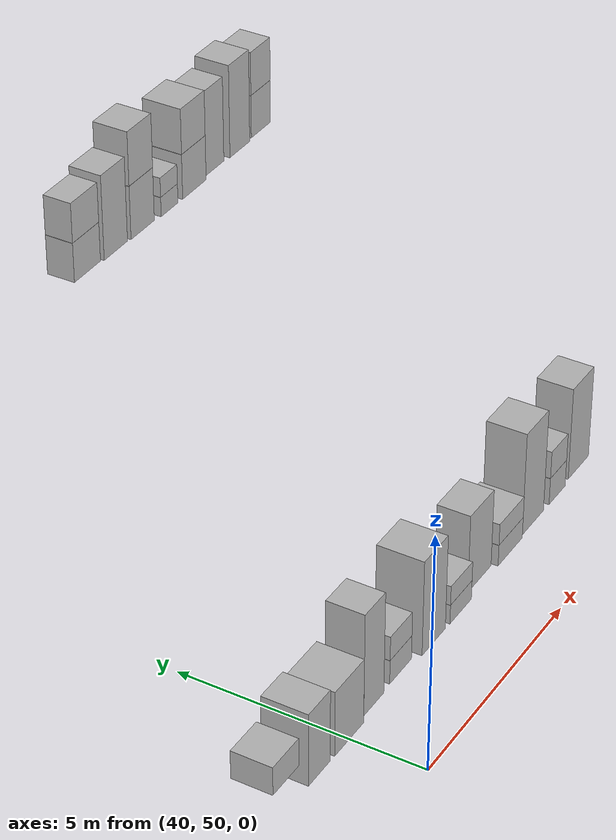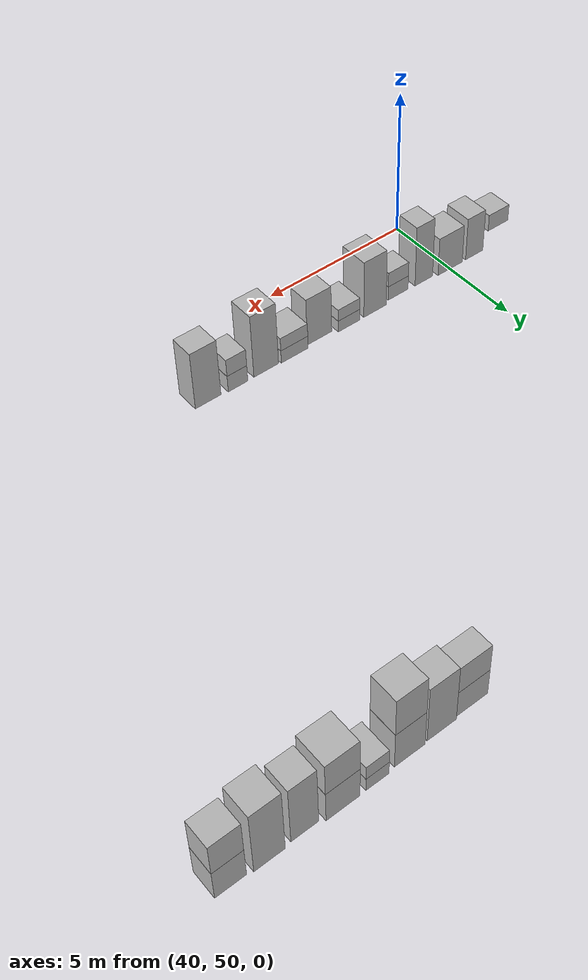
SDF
<sdf version="1.5">
 <world name="default">
  <model name="ground_plane">
   <static>true</static>
   <link name="link">
    <collision name="collision">
     <geometry><plane><normal>0 0 1</normal><size>250 250</size></plane></geometry>
     <surface><friction><ode><mu>1</mu><mu2>1</mu2></ode></friction></surface>
    </collision>
    <visual name="grass">
     <cast_shadows>false</cast_shadows>
     <geometry><mesh><uri>file://grass_plane/meshes/grass_plane.dae</uri></mesh></geometry>
    </visual>
   </link>
  </model>
  <model name="Cardboard_box_top_293">
   <link name="link_0">
    <pose>38 52 0.607929482105 0 0 0</pose>
    <inertial>
     <mass>1</mass>
     <inertia>
      <ixx>0.166667</ixx>
      <ixy>0</ixy>
      <ixz>0</ixz>
      <iyy>0.166667</iyy>
      <iyz>0</iyz>
      <izz>0.166667</izz>
     </inertia>
    </inertial>
    <collision name="collision">
     <geometry>
      <mesh>
       <uri>model://Cardboard_box/meshes/cardboard_box.dae</uri>
       <scale>2.08884652729 2.05273501471 1.51982370526</scale>
      </mesh>
     </geometry>
    </collision>
    <visual name="visual">
     <geometry>
      <mesh>
       <uri>model://Cardboard_box/meshes/cardboard_box.dae</uri>
       <scale>2.08884652729 2.05273501471 1.51982370526</scale>
      </mesh>
     </geometry>
    </visual>
   </link>
   <static>1</static>
  </model>
  <model name="Cardboard_box_294">
   <link name="link_0">
    <pose>39 52 0 0 0 0</pose>
    <inertial>
     <mass>1</mass>
     <inertia>
      <ixx>0.166667</ixx>
      <ixy>0</ixy>
      <ixz>0</ixz>
      <iyy>0.166667</iyy>
      <iyz>0</iyz>
      <izz>0.166667</izz>
     </inertia>
    </inertial>
    <collision name="collision">
     <geometry>
      <mesh>
       <uri>model://Cardboard_box/meshes/cardboard_box.dae</uri>
       <scale>1.80984824267 2.32740431327 3.96974668573</scale>
      </mesh>
     </geometry>
    </collision>
    <visual name="visual">
     <geometry>
      <mesh>
       <uri>model://Cardboard_box/meshes/cardboard_box.dae</uri>
       <scale>1.80984824267 2.32740431327 3.96974668573</scale>
      </mesh>
     </geometry>
    </visual>
   </link>
   <static>1</static>
  </model>
  <model name="Cardboard_box_295">
   <link name="link_0">
    <pose>40 52 0 0 0 0</pose>
    <inertial>
     <mass>1</mass>
     <inertia>
      <ixx>0.166667</ixx>
      <ixy>0</ixy>
      <ixz>0</ixz>
      <iyy>0.166667</iyy>
      <iyz>0</iyz>
      <izz>0.166667</izz>
     </inertia>
    </inertial>
    <collision name="collision">
     <geometry>
      <mesh>
       <uri>model://Cardboard_box/meshes/cardboard_box.dae</uri>
       <scale>2.49127899919 2.36117213884 3.57008381776</scale>
      </mesh>
     </geometry>
    </collision>
    <visual name="visual">
     <geometry>
      <mesh>
       <uri>model://Cardboard_box/meshes/cardboard_box.dae</uri>
       <scale>2.49127899919 2.36117213884 3.57008381776</scale>
      </mesh>
     </geometry>
    </visual>
   </link>
   <static>1</static>
  </model>
  <model name="Cardboard_box_296">
   <link name="link_0">
    <pose>41 52 0 0 0 0</pose>
    <inertial>
     <mass>1</mass>
     <inertia>
      <ixx>0.166667</ixx>
      <ixy>0</ixy>
      <ixz>0</ixz>
      <iyy>0.166667</iyy>
      <iyz>0</iyz>
      <izz>0.166667</izz>
     </inertia>
    </inertial>
    <collision name="collision">
     <geometry>
      <mesh>
       <uri>model://Cardboard_box/meshes/cardboard_box.dae</uri>
       <scale>1.77474973916 1.9382852117 5.63158389002</scale>
      </mesh>
     </geometry>
    </collision>
    <visual name="visual">
     <geometry>
      <mesh>
       <uri>model://Cardboard_box/meshes/cardboard_box.dae</uri>
       <scale>1.77474973916 1.9382852117 5.63158389002</scale>
      </mesh>
     </geometry>
    </visual>
   </link>
   <static>1</static>
  </model>
  <model name="Cardboard_box_297">
   <link name="link_0">
    <pose>42 52 0 0 0 0</pose>
    <inertial>
     <mass>1</mass>
     <inertia>
      <ixx>0.166667</ixx>
      <ixy>0</ixy>
      <ixz>0</ixz>
      <iyy>0.166667</iyy>
      <iyz>0</iyz>
      <izz>0.166667</izz>
     </inertia>
    </inertial>
    <collision name="collision">
     <geometry>
      <mesh>
       <uri>model://Cardboard_box/meshes/cardboard_box.dae</uri>
       <scale>1.98235867764 1.80844175372 1.32904738398</scale>
      </mesh>
     </geometry>
    </collision>
    <visual name="visual">
     <geometry>
      <mesh>
       <uri>model://Cardboard_box/meshes/cardboard_box.dae</uri>
       <scale>1.98235867764 1.80844175372 1.32904738398</scale>
      </mesh>
     </geometry>
    </visual>
   </link>
   <static>1</static>
  </model>
  <model name="Cardboard_box_top_297">
   <link name="link_0">
    <pose>42 52 0.531618953594 0 0 0</pose>
    <inertial>
     <mass>1</mass>
     <inertia>
      <ixx>0.166667</ixx>
      <ixy>0</ixy>
      <ixz>0</ixz>
      <iyy>0.166667</iyy>
      <iyz>0</iyz>
      <izz>0.166667</izz>
     </inertia>
    </inertial>
    <collision name="collision">
     <geometry>
      <mesh>
       <uri>model://Cardboard_box/meshes/cardboard_box.dae</uri>
       <scale>1.98235867764 1.80844175372 1.32904738398</scale>
      </mesh>
     </geometry>
    </collision>
    <visual name="visual">
     <geometry>
      <mesh>
       <uri>model://Cardboard_box/meshes/cardboard_box.dae</uri>
       <scale>1.98235867764 1.80844175372 1.32904738398</scale>
      </mesh>
     </geometry>
    </visual>
   </link>
   <static>1</static>
  </model>
  <model name="Cardboard_box_298">
   <link name="link_0">
    <pose>43 52 0 0 0 0</pose>
    <inertial>
     <mass>1</mass>
     <inertia>
      <ixx>0.166667</ixx>
      <ixy>0</ixy>
      <ixz>0</ixz>
      <iyy>0.166667</iyy>
      <iyz>0</iyz>
      <izz>0.166667</izz>
     </inertia>
    </inertial>
    <collision name="collision">
     <geometry>
      <mesh>
       <uri>model://Cardboard_box/meshes/cardboard_box.dae</uri>
       <scale>2.18499619586 2.40635157475 5.29486968502</scale>
      </mesh>
     </geometry>
    </collision>
    <visual name="visual">
     <geometry>
      <mesh>
       <uri>model://Cardboard_box/meshes/cardboard_box.dae</uri>
       <scale>2.18499619586 2.40635157475 5.29486968502</scale>
      </mesh>
     </geometry>
    </visual>
   </link>
   <static>1</static>
  </model>
  <model name="Cardboard_box_299">
   <link name="link_0">
    <pose>44 52 0 0 0 0</pose>
    <inertial>
     <mass>1</mass>
     <inertia>
      <ixx>0.166667</ixx>
      <ixy>0</ixy>
      <ixz>0</ixz>
      <iyy>0.166667</iyy>
      <iyz>0</iyz>
      <izz>0.166667</izz>
     </inertia>
    </inertial>
    <collision name="collision">
     <geometry>
      <mesh>
       <uri>model://Cardboard_box/meshes/cardboard_box.dae</uri>
       <scale>2.06754654523 2.45385818261 1.07654712468</scale>
      </mesh>
     </geometry>
    </collision>
    <visual name="visual">
     <geometry>
      <mesh>
       <uri>model://Cardboard_box/meshes/cardboard_box.dae</uri>
       <scale>2.06754654523 2.45385818261 1.07654712468</scale>
      </mesh>
     </geometry>
    </visual>
   </link>
   <static>1</static>
  </model>
  <model name="Cardboard_box_top_299">
   <link name="link_0">
    <pose>44 52 0.430618849871 0 0 0</pose>
    <inertial>
     <mass>1</mass>
     <inertia>
      <ixx>0.166667</ixx>
      <ixy>0</ixy>
      <ixz>0</ixz>
      <iyy>0.166667</iyy>
      <iyz>0</iyz>
      <izz>0.166667</izz>
     </inertia>
    </inertial>
    <collision name="collision">
     <geometry>
      <mesh>
       <uri>model://Cardboard_box/meshes/cardboard_box.dae</uri>
       <scale>2.06754654523 2.45385818261 1.07654712468</scale>
      </mesh>
     </geometry>
    </collision>
    <visual name="visual">
     <geometry>
      <mesh>
       <uri>model://Cardboard_box/meshes/cardboard_box.dae</uri>
       <scale>2.06754654523 2.45385818261 1.07654712468</scale>
      </mesh>
     </geometry>
    </visual>
   </link>
   <static>1</static>
  </model>
  <model name="Cardboard_box_300">
   <link name="link_0">
    <pose>45 52 0 0 0 0</pose>
    <inertial>
     <mass>1</mass>
     <inertia>
      <ixx>0.166667</ixx>
      <ixy>0</ixy>
      <ixz>0</ixz>
      <iyy>0.166667</iyy>
      <iyz>0</iyz>
      <izz>0.166667</izz>
     </inertia>
    </inertial>
    <collision name="collision">
     <geometry>
      <mesh>
       <uri>model://Cardboard_box/meshes/cardboard_box.dae</uri>
       <scale>2.28884189671 1.72778632899 4.37802884984</scale>
      </mesh>
     </geometry>
    </collision>
    <visual name="visual">
     <geometry>
      <mesh>
       <uri>model://Cardboard_box/meshes/cardboard_box.dae</uri>
       <scale>2.28884189671 1.72778632899 4.37802884984</scale>
      </mesh>
     </geometry>
    </visual>
   </link>
   <static>1</static>
  </model>
  <model name="Cardboard_box_301">
   <link name="link_0">
    <pose>46 52 0 0 0 0</pose>
    <inertial>
     <mass>1</mass>
     <inertia>
      <ixx>0.166667</ixx>
      <ixy>0</ixy>
      <ixz>0</ixz>
      <iyy>0.166667</iyy>
      <iyz>0</iyz>
      <izz>0.166667</izz>
     </inertia>
    </inertial>
    <collision name="collision">
     <geometry>
      <mesh>
       <uri>model://Cardboard_box/meshes/cardboard_box.dae</uri>
       <scale>2.45560933553 2.31068479603 1.20030977443</scale>
      </mesh>
     </geometry>
    </collision>
    <visual name="visual">
     <geometry>
      <mesh>
       <uri>model://Cardboard_box/meshes/cardboard_box.dae</uri>
       <scale>2.45560933553 2.31068479603 1.20030977443</scale>
      </mesh>
     </geometry>
    </visual>
   </link>
   <static>1</static>
  </model>
  <model name="Cardboard_box_top_301">
   <link name="link_0">
    <pose>46 52 0.480123909771 0 0 0</pose>
    <inertial>
     <mass>1</mass>
     <inertia>
      <ixx>0.166667</ixx>
      <ixy>0</ixy>
      <ixz>0</ixz>
      <iyy>0.166667</iyy>
      <iyz>0</iyz>
      <izz>0.166667</izz>
     </inertia>
    </inertial>
    <collision name="collision">
     <geometry>
      <mesh>
       <uri>model://Cardboard_box/meshes/cardboard_box.dae</uri>
       <scale>2.45560933553 2.31068479603 1.20030977443</scale>
      </mesh>
     </geometry>
    </collision>
    <visual name="visual">
     <geometry>
      <mesh>
       <uri>model://Cardboard_box/meshes/cardboard_box.dae</uri>
       <scale>2.45560933553 2.31068479603 1.20030977443</scale>
      </mesh>
     </geometry>
    </visual>
   </link>
   <static>1</static>
  </model>
  <model name="Cardboard_box_302">
   <link name="link_0">
    <pose>47 52 0 0 0 0</pose>
    <inertial>
     <mass>1</mass>
     <inertia>
      <ixx>0.166667</ixx>
      <ixy>0</ixy>
      <ixz>0</ixz>
      <iyy>0.166667</iyy>
      <iyz>0</iyz>
      <izz>0.166667</izz>
     </inertia>
    </inertial>
    <collision name="collision">
     <geometry>
      <mesh>
       <uri>model://Cardboard_box/meshes/cardboard_box.dae</uri>
       <scale>2.21564561597 2.11517232804 5.83129655435</scale>
      </mesh>
     </geometry>
    </collision>
    <visual name="visual">
     <geometry>
      <mesh>
       <uri>model://Cardboard_box/meshes/cardboard_box.dae</uri>
       <scale>2.21564561597 2.11517232804 5.83129655435</scale>
      </mesh>
     </geometry>
    </visual>
   </link>
   <static>1</static>
  </model>
  <model name="Cardboard_box_303">
   <link name="link_0">
    <pose>48 52 0 0 0 0</pose>
    <inertial>
     <mass>1</mass>
     <inertia>
      <ixx>0.166667</ixx>
      <ixy>0</ixy>
      <ixz>0</ixz>
      <iyy>0.166667</iyy>
      <iyz>0</iyz>
      <izz>0.166667</izz>
     </inertia>
    </inertial>
    <collision name="collision">
     <geometry>
      <mesh>
       <uri>model://Cardboard_box/meshes/cardboard_box.dae</uri>
       <scale>1.71643059579 2.15358051391 1.53642713254</scale>
      </mesh>
     </geometry>
    </collision>
    <visual name="visual">
     <geometry>
      <mesh>
       <uri>model://Cardboard_box/meshes/cardboard_box.dae</uri>
       <scale>1.71643059579 2.15358051391 1.53642713254</scale>
      </mesh>
     </geometry>
    </visual>
   </link>
   <static>1</static>
  </model>
  <model name="Cardboard_box_top_303">
   <link name="link_0">
    <pose>48 52 0.614570853017 0 0 0</pose>
    <inertial>
     <mass>1</mass>
     <inertia>
      <ixx>0.166667</ixx>
      <ixy>0</ixy>
      <ixz>0</ixz>
      <iyy>0.166667</iyy>
      <iyz>0</iyz>
      <izz>0.166667</izz>
     </inertia>
    </inertial>
    <collision name="collision">
     <geometry>
      <mesh>
       <uri>model://Cardboard_box/meshes/cardboard_box.dae</uri>
       <scale>1.71643059579 2.15358051391 1.53642713254</scale>
      </mesh>
     </geometry>
    </collision>
    <visual name="visual">
     <geometry>
      <mesh>
       <uri>model://Cardboard_box/meshes/cardboard_box.dae</uri>
       <scale>1.71643059579 2.15358051391 1.53642713254</scale>
      </mesh>
     </geometry>
    </visual>
   </link>
   <static>1</static>
  </model>
  <model name="Cardboard_box_304">
   <link name="link_0">
    <pose>49 52 0 0 0 0</pose>
    <inertial>
     <mass>1</mass>
     <inertia>
      <ixx>0.166667</ixx>
      <ixy>0</ixy>
      <ixz>0</ixz>
      <iyy>0.166667</iyy>
      <iyz>0</iyz>
      <izz>0.166667</izz>
     </inertia>
    </inertial>
    <collision name="collision">
     <geometry>
      <mesh>
       <uri>model://Cardboard_box/meshes/cardboard_box.dae</uri>
       <scale>2.20843622604 1.92846472217 5.27297419395</scale>
      </mesh>
     </geometry>
    </collision>
    <visual name="visual">
     <geometry>
      <mesh>
       <uri>model://Cardboard_box/meshes/cardboard_box.dae</uri>
       <scale>2.20843622604 1.92846472217 5.27297419395</scale>
      </mesh>
     </geometry>
    </visual>
   </link>
   <static>1</static>
  </model>
  <model name="Cardboard_box_305">
   <link name="link_0">
    <pose>50 64 0 0 0 0</pose>
    <inertial>
     <mass>1</mass>
     <inertia>
      <ixx>0.166667</ixx>
      <ixy>0</ixy>
      <ixz>0</ixz>
      <iyy>0.166667</iyy>
      <iyz>0</iyz>
      <izz>0.166667</izz>
     </inertia>
    </inertial>
    <collision name="collision">
     <geometry>
      <mesh>
       <uri>model://Cardboard_box/meshes/cardboard_box.dae</uri>
       <scale>2.47524846945 1.73329689434 2.44826421939</scale>
      </mesh>
     </geometry>
    </collision>
    <visual name="visual">
     <geometry>
      <mesh>
       <uri>model://Cardboard_box/meshes/cardboard_box.dae</uri>
       <scale>2.47524846945 1.73329689434 2.44826421939</scale>
      </mesh>
     </geometry>
    </visual>
   </link>
   <static>1</static>
  </model>
  <model name="Cardboard_box_top_305">
   <link name="link_0">
    <pose>50 64 0.979305687756 0 0 0</pose>
    <inertial>
     <mass>1</mass>
     <inertia>
      <ixx>0.166667</ixx>
      <ixy>0</ixy>
      <ixz>0</ixz>
      <iyy>0.166667</iyy>
      <iyz>0</iyz>
      <izz>0.166667</izz>
     </inertia>
    </inertial>
    <collision name="collision">
     <geometry>
      <mesh>
       <uri>model://Cardboard_box/meshes/cardboard_box.dae</uri>
       <scale>2.47524846945 1.73329689434 2.44826421939</scale>
      </mesh>
     </geometry>
    </collision>
    <visual name="visual">
     <geometry>
      <mesh>
       <uri>model://Cardboard_box/meshes/cardboard_box.dae</uri>
       <scale>2.47524846945 1.73329689434 2.44826421939</scale>
      </mesh>
     </geometry>
    </visual>
   </link>
   <static>1</static>
  </model>
  <model name="Cardboard_box_306">
   <link name="link_0">
    <pose>51 64 0 0 0 0</pose>
    <inertial>
     <mass>1</mass>
     <inertia>
      <ixx>0.166667</ixx>
      <ixy>0</ixy>
      <ixz>0</ixz>
      <iyy>0.166667</iyy>
      <iyz>0</iyz>
      <izz>0.166667</izz>
     </inertia>
    </inertial>
    <collision name="collision">
     <geometry>
      <mesh>
       <uri>model://Cardboard_box/meshes/cardboard_box.dae</uri>
       <scale>2.26770072192 2.01553124468 5.29395032954</scale>
      </mesh>
     </geometry>
    </collision>
    <visual name="visual">
     <geometry>
      <mesh>
       <uri>model://Cardboard_box/meshes/cardboard_box.dae</uri>
       <scale>2.26770072192 2.01553124468 5.29395032954</scale>
      </mesh>
     </geometry>
    </visual>
   </link>
   <static>1</static>
  </model>
  <model name="Cardboard_box_307">
   <link name="link_0">
    <pose>52 64 0 0 0 0</pose>
    <inertial>
     <mass>1</mass>
     <inertia>
      <ixx>0.166667</ixx>
      <ixy>0</ixy>
      <ixz>0</ixz>
      <iyy>0.166667</iyy>
      <iyz>0</iyz>
      <izz>0.166667</izz>
     </inertia>
    </inertial>
    <collision name="collision">
     <geometry>
      <mesh>
       <uri>model://Cardboard_box/meshes/cardboard_box.dae</uri>
       <scale>2.32135409959 2.18274711714 3.35770078427</scale>
      </mesh>
     </geometry>
    </collision>
    <visual name="visual">
     <geometry>
      <mesh>
       <uri>model://Cardboard_box/meshes/cardboard_box.dae</uri>
       <scale>2.32135409959 2.18274711714 3.35770078427</scale>
      </mesh>
     </geometry>
    </visual>
   </link>
   <static>1</static>
  </model>
  <model name="Cardboard_box_top_307">
   <link name="link_0">
    <pose>52 64 1.34308031371 0 0 0</pose>
    <inertial>
     <mass>1</mass>
     <inertia>
      <ixx>0.166667</ixx>
      <ixy>0</ixy>
      <ixz>0</ixz>
      <iyy>0.166667</iyy>
      <iyz>0</iyz>
      <izz>0.166667</izz>
     </inertia>
    </inertial>
    <collision name="collision">
     <geometry>
      <mesh>
       <uri>model://Cardboard_box/meshes/cardboard_box.dae</uri>
       <scale>2.32135409959 2.18274711714 3.35770078427</scale>
      </mesh>
     </geometry>
    </collision>
    <visual name="visual">
     <geometry>
      <mesh>
       <uri>model://Cardboard_box/meshes/cardboard_box.dae</uri>
       <scale>2.32135409959 2.18274711714 3.35770078427</scale>
      </mesh>
     </geometry>
    </visual>
   </link>
   <static>1</static>
  </model>
  <model name="Cardboard_box_308">
   <link name="link_0">
    <pose>53 64 0 0 0 0</pose>
    <inertial>
     <mass>1</mass>
     <inertia>
      <ixx>0.166667</ixx>
      <ixy>0</ixy>
      <ixz>0</ixz>
      <iyy>0.166667</iyy>
      <iyz>0</iyz>
      <izz>0.166667</izz>
     </inertia>
    </inertial>
    <collision name="collision">
     <geometry>
      <mesh>
       <uri>model://Cardboard_box/meshes/cardboard_box.dae</uri>
       <scale>1.70649234185 2.42004991918 1.2304227429</scale>
      </mesh>
     </geometry>
    </collision>
    <visual name="visual">
     <geometry>
      <mesh>
       <uri>model://Cardboard_box/meshes/cardboard_box.dae</uri>
       <scale>1.70649234185 2.42004991918 1.2304227429</scale>
      </mesh>
     </geometry>
    </visual>
   </link>
   <static>1</static>
  </model>
  <model name="Cardboard_box_top_308">
   <link name="link_0">
    <pose>53 64 0.492169097158 0 0 0</pose>
    <inertial>
     <mass>1</mass>
     <inertia>
      <ixx>0.166667</ixx>
      <ixy>0</ixy>
      <ixz>0</ixz>
      <iyy>0.166667</iyy>
      <iyz>0</iyz>
      <izz>0.166667</izz>
     </inertia>
    </inertial>
    <collision name="collision">
     <geometry>
      <mesh>
       <uri>model://Cardboard_box/meshes/cardboard_box.dae</uri>
       <scale>1.70649234185 2.42004991918 1.2304227429</scale>
      </mesh>
     </geometry>
    </collision>
    <visual name="visual">
     <geometry>
      <mesh>
       <uri>model://Cardboard_box/meshes/cardboard_box.dae</uri>
       <scale>1.70649234185 2.42004991918 1.2304227429</scale>
      </mesh>
     </geometry>
    </visual>
   </link>
   <static>1</static>
  </model>
  <model name="Cardboard_box_309">
   <link name="link_0">
    <pose>54 64 0 0 0 0</pose>
    <inertial>
     <mass>1</mass>
     <inertia>
      <ixx>0.166667</ixx>
      <ixy>0</ixy>
      <ixz>0</ixz>
      <iyy>0.166667</iyy>
      <iyz>0</iyz>
      <izz>0.166667</izz>
     </inertia>
    </inertial>
    <collision name="collision">
     <geometry>
      <mesh>
       <uri>model://Cardboard_box/meshes/cardboard_box.dae</uri>
       <scale>2.43860359323 2.47683573618 2.85341969898</scale>
      </mesh>
     </geometry>
    </collision>
    <visual name="visual">
     <geometry>
      <mesh>
       <uri>model://Cardboard_box/meshes/cardboard_box.dae</uri>
       <scale>2.43860359323 2.47683573618 2.85341969898</scale>
      </mesh>
     </geometry>
    </visual>
   </link>
   <static>1</static>
  </model>
  <model name="Cardboard_box_top_309">
   <link name="link_0">
    <pose>54 64 1.14136787959 0 0 0</pose>
    <inertial>
     <mass>1</mass>
     <inertia>
      <ixx>0.166667</ixx>
      <ixy>0</ixy>
      <ixz>0</ixz>
      <iyy>0.166667</iyy>
      <iyz>0</iyz>
      <izz>0.166667</izz>
     </inertia>
    </inertial>
    <collision name="collision">
     <geometry>
      <mesh>
       <uri>model://Cardboard_box/meshes/cardboard_box.dae</uri>
       <scale>2.43860359323 2.47683573618 2.85341969898</scale>
      </mesh>
     </geometry>
    </collision>
    <visual name="visual">
     <geometry>
      <mesh>
       <uri>model://Cardboard_box/meshes/cardboard_box.dae</uri>
       <scale>2.43860359323 2.47683573618 2.85341969898</scale>
      </mesh>
     </geometry>
    </visual>
   </link>
   <static>1</static>
  </model>
  <model name="Cardboard_box_310">
   <link name="link_0">
    <pose>55 64 0 0 0 0</pose>
    <inertial>
     <mass>1</mass>
     <inertia>
      <ixx>0.166667</ixx>
      <ixy>0</ixy>
      <ixz>0</ixz>
      <iyy>0.166667</iyy>
      <iyz>0</iyz>
      <izz>0.166667</izz>
     </inertia>
    </inertial>
    <collision name="collision">
     <geometry>
      <mesh>
       <uri>model://Cardboard_box/meshes/cardboard_box.dae</uri>
       <scale>1.95114431472 1.99162512365 5.42927424283</scale>
      </mesh>
     </geometry>
    </collision>
    <visual name="visual">
     <geometry>
      <mesh>
       <uri>model://Cardboard_box/meshes/cardboard_box.dae</uri>
       <scale>1.95114431472 1.99162512365 5.42927424283</scale>
      </mesh>
     </geometry>
    </visual>
   </link>
   <static>1</static>
  </model>
  <model name="Cardboard_box_311">
   <link name="link_0">
    <pose>56 64 0 0 0 0</pose>
    <inertial>
     <mass>1</mass>
     <inertia>
      <ixx>0.166667</ixx>
      <ixy>0</ixy>
      <ixz>0</ixz>
      <iyy>0.166667</iyy>
      <iyz>0</iyz>
      <izz>0.166667</izz>
     </inertia>
    </inertial>
    <collision name="collision">
     <geometry>
      <mesh>
       <uri>model://Cardboard_box/meshes/cardboard_box.dae</uri>
       <scale>2.14587196814 2.21997465695 5.94275994464</scale>
      </mesh>
     </geometry>
    </collision>
    <visual name="visual">
     <geometry>
      <mesh>
       <uri>model://Cardboard_box/meshes/cardboard_box.dae</uri>
       <scale>2.14587196814 2.21997465695 5.94275994464</scale>
      </mesh>
     </geometry>
    </visual>
   </link>
   <static>1</static>
  </model>
  <model name="Cardboard_box_312">
   <link name="link_0">
    <pose>57 64 0 0 0 0</pose>
    <inertial>
     <mass>1</mass>
     <inertia>
      <ixx>0.166667</ixx>
      <ixy>0</ixy>
      <ixz>0</ixz>
      <iyy>0.166667</iyy>
      <iyz>0</iyz>
      <izz>0.166667</izz>
     </inertia>
    </inertial>
    <collision name="collision">
     <geometry>
      <mesh>
       <uri>model://Cardboard_box/meshes/cardboard_box.dae</uri>
       <scale>2.11911512398 1.97221156548 2.75885021226</scale>
      </mesh>
     </geometry>
    </collision>
    <visual name="visual">
     <geometry>
      <mesh>
       <uri>model://Cardboard_box/meshes/cardboard_box.dae</uri>
       <scale>2.11911512398 1.97221156548 2.75885021226</scale>
      </mesh>
     </geometry>
    </visual>
   </link>
   <static>1</static>
  </model>
  <model name="Cardboard_box_top_312">
   <link name="link_0">
    <pose>57 64 1.1035400849 0 0 0</pose>
    <inertial>
     <mass>1</mass>
     <inertia>
      <ixx>0.166667</ixx>
      <ixy>0</ixy>
      <ixz>0</ixz>
      <iyy>0.166667</iyy>
      <iyz>0</iyz>
      <izz>0.166667</izz>
     </inertia>
    </inertial>
    <collision name="collision">
     <geometry>
      <mesh>
       <uri>model://Cardboard_box/meshes/cardboard_box.dae</uri>
       <scale>2.11911512398 1.97221156548 2.75885021226</scale>
      </mesh>
     </geometry>
    </collision>
    <visual name="visual">
     <geometry>
      <mesh>
       <uri>model://Cardboard_box/meshes/cardboard_box.dae</uri>
       <scale>2.11911512398 1.97221156548 2.75885021226</scale>
      </mesh>
     </geometry>
    </visual>
   </link>
   <static>1</static>
  </model>
 </world>
</sdf>
